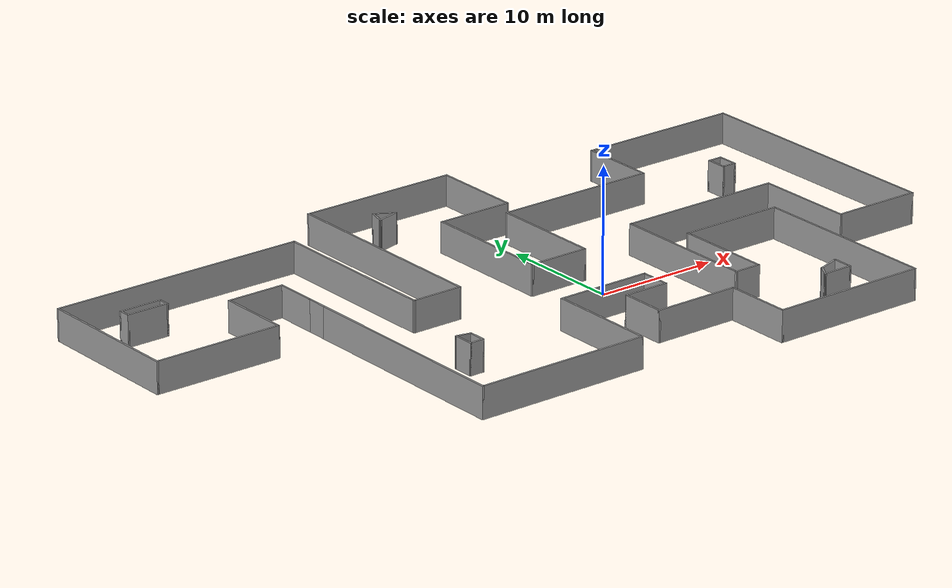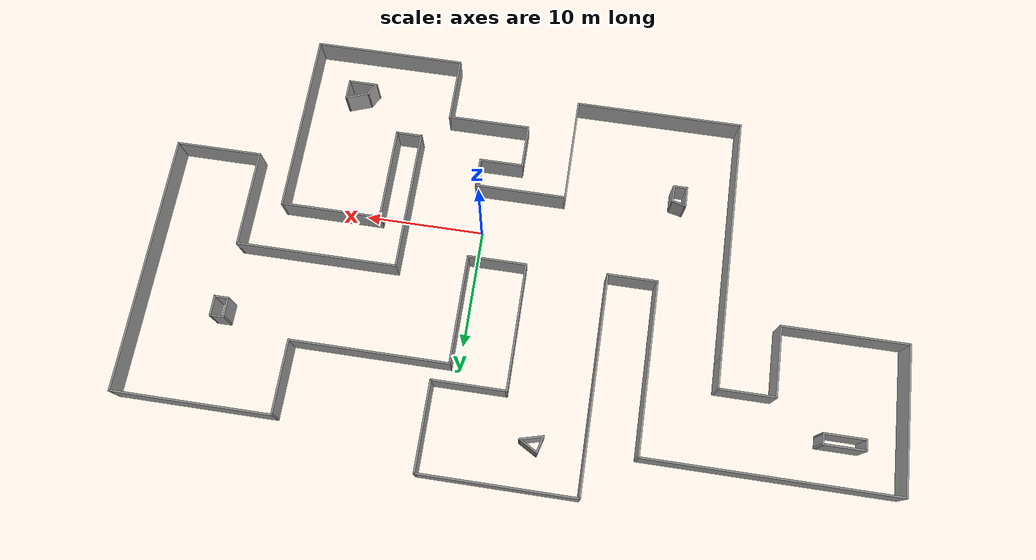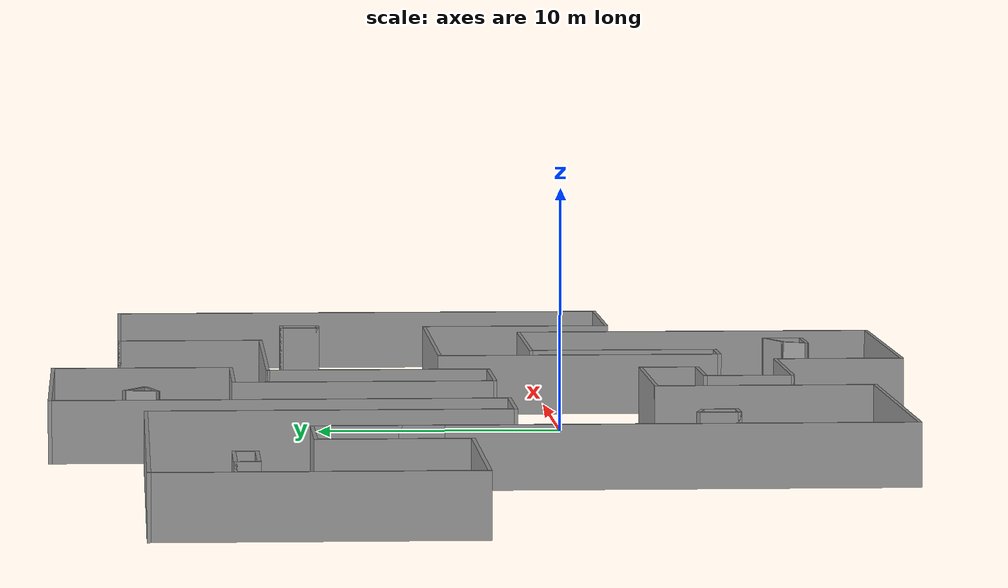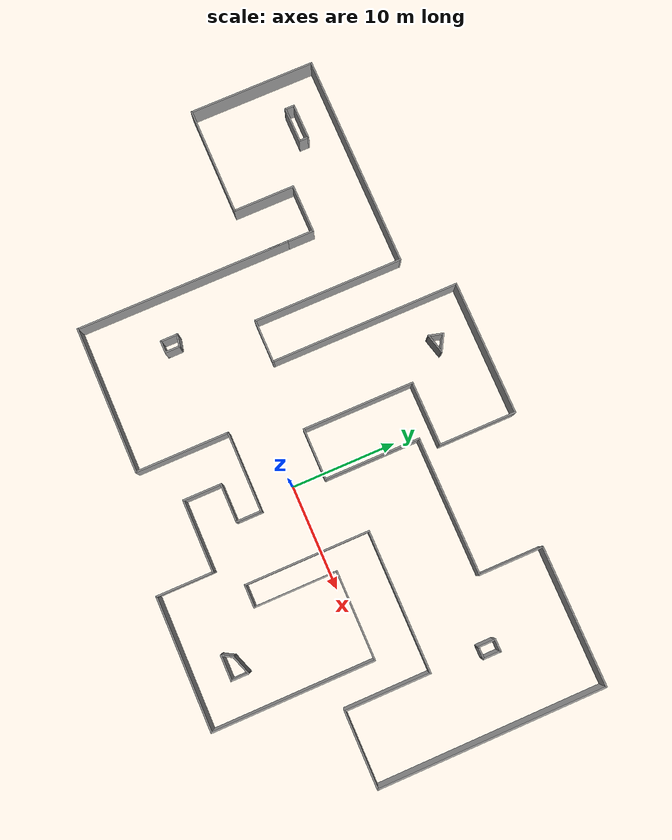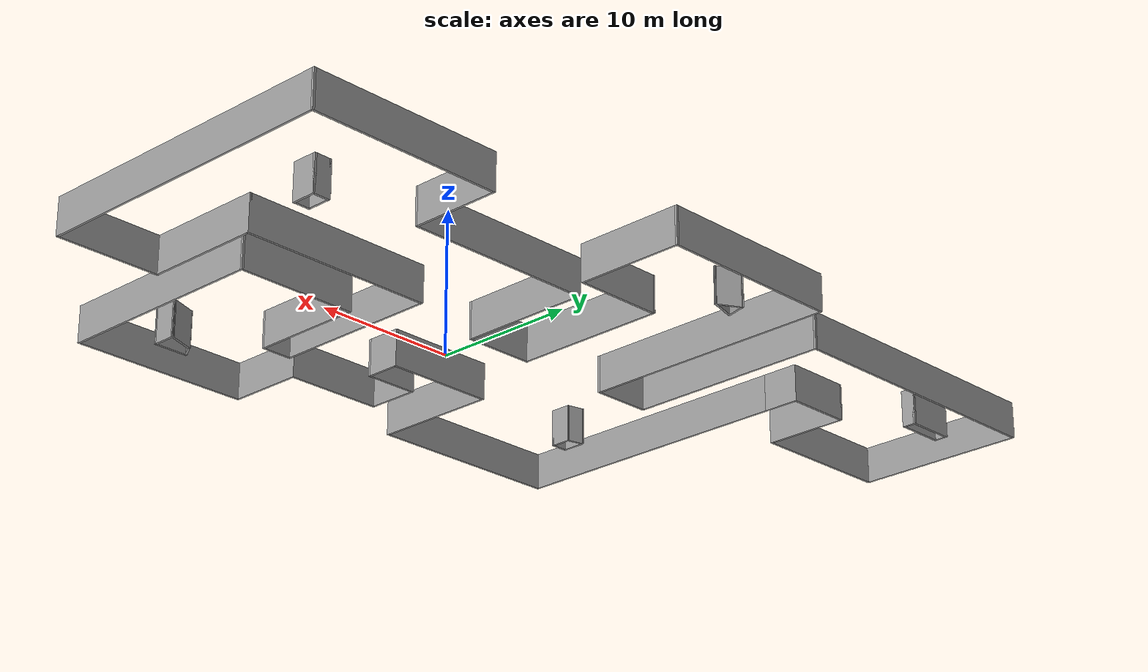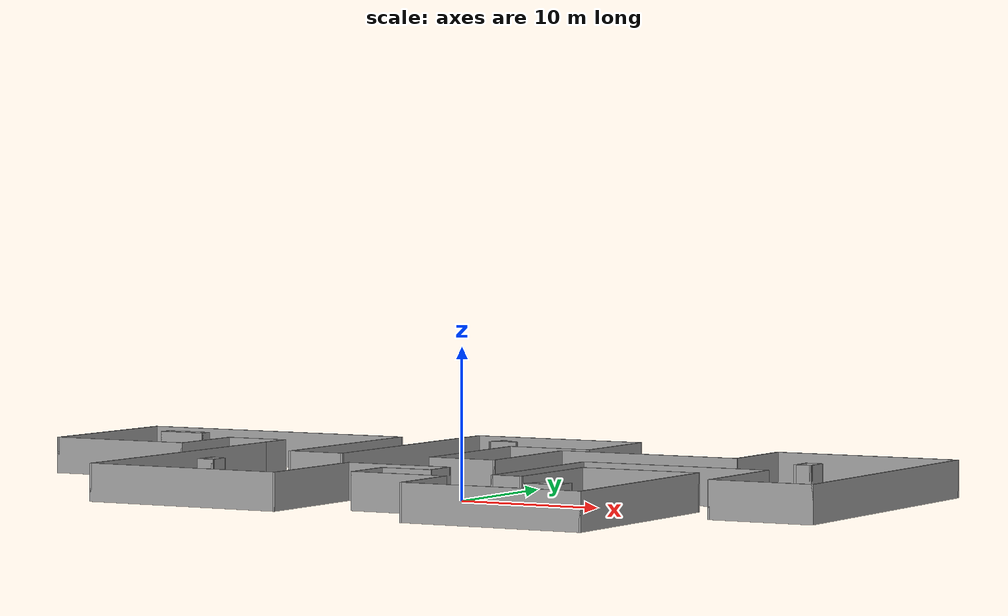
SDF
<?xml version='1.0'?>
<sdf version='1.6'>
  <model name='new_map'>
    <pose frame=''>-4.36476 3.09529 0 0 -0 0</pose>
    <link name='Wall_1'>
      <collision name='Wall_1_Collision'>
        <geometry>
          <box>
            <size>20.75 0.15 2.5</size>
          </box>
        </geometry>
        <pose frame=''>0 0 1.25 0 -0 0</pose>
      </collision>
      <visual name='Wall_1_Visual'>
        <pose frame=''>0 0 1.25 0 -0 0</pose>
        <geometry>
          <box>
            <size>20.75 0.15 2.5</size>
          </box>
        </geometry>
        <material>
          <script>
            <uri>file://media/materials/scripts/gazebo.material</uri>
            <name>Gazebo/Grey</name>
          </script>
          <ambient>1 1 1 1</ambient>
        </material>
        <meta>
          <layer>0</layer>
        </meta>
      </visual>
      <pose frame=''>-16.3 -5.05 0 0 -0 -1.5708</pose>
    </link>
    <link name='Wall_10'>
      <collision name='Wall_10_Collision'>
        <geometry>
          <box>
            <size>12.75 0.15 2.5</size>
          </box>
        </geometry>
        <pose frame=''>0 0 1.25 0 -0 0</pose>
      </collision>
      <visual name='Wall_10_Visual'>
        <pose frame=''>0 0 1.25 0 -0 0</pose>
        <geometry>
          <box>
            <size>12.75 0.15 2.5</size>
          </box>
        </geometry>
        <material>
          <script>
            <uri>file://media/materials/scripts/gazebo.material</uri>
            <name>Gazebo/Grey</name>
          </script>
          <ambient>1 1 1 1</ambient>
        </material>
        <meta>
          <layer>0</layer>
        </meta>
      </visual>
      <pose frame=''>14.95 -17.8 0 0 -0 0</pose>
    </link>
    <link name='Wall_11'>
      <collision name='Wall_11_Collision'>
        <geometry>
          <box>
            <size>15.5 0.15 2.5</size>
          </box>
        </geometry>
        <pose frame=''>0 0 1.25 0 -0 0</pose>
      </collision>
      <visual name='Wall_11_Visual'>
        <pose frame=''>0 0 1.25 0 -0 0</pose>
        <geometry>
          <box>
            <size>15.5 0.15 2.5</size>
          </box>
        </geometry>
        <material>
          <script>
            <uri>file://media/materials/scripts/gazebo.material</uri>
            <name>Gazebo/Grey</name>
          </script>
          <ambient>1 1 1 1</ambient>
        </material>
        <meta>
          <layer>0</layer>
        </meta>
      </visual>
      <pose frame=''>21.25 -10.125 0 0 -0 1.5708</pose>
    </link>
    <link name='Wall_12'>
      <collision name='Wall_12_Collision'>
        <geometry>
          <box>
            <size>8.5 0.15 2.5</size>
          </box>
        </geometry>
        <pose frame=''>0 0 1.25 0 -0 0</pose>
      </collision>
      <visual name='Wall_12_Visual'>
        <pose frame=''>0 0 1.25 0 -0 0</pose>
        <geometry>
          <box>
            <size>8.5 0.15 2.5</size>
          </box>
        </geometry>
        <material>
          <script>
            <uri>file://media/materials/scripts/gazebo.material</uri>
            <name>Gazebo/Grey</name>
          </script>
          <ambient>1 1 1 1</ambient>
        </material>
        <meta>
          <layer>0</layer>
        </meta>
      </visual>
      <pose frame=''>17.075 -2.45 0 0 -0 3.14159</pose>
    </link>
    <link name='Wall_13'>
      <collision name='Wall_13_Collision'>
        <geometry>
          <box>
            <size>8 0.15 2.5</size>
          </box>
        </geometry>
        <pose frame=''>0 0 1.25 0 -0 0</pose>
      </collision>
      <visual name='Wall_13_Visual'>
        <pose frame=''>0 0 1.25 0 -0 0</pose>
        <geometry>
          <box>
            <size>8 0.15 2.5</size>
          </box>
        </geometry>
        <material>
          <script>
            <uri>file://media/materials/scripts/gazebo.material</uri>
            <name>Gazebo/Grey</name>
          </script>
          <ambient>1 1 1 1</ambient>
        </material>
        <meta>
          <layer>0</layer>
        </meta>
      </visual>
      <pose frame=''>12.9 -6.375 0 0 -0 -1.5708</pose>
    </link>
    <link name='Wall_14'>
      <collision name='Wall_14_Collision'>
        <geometry>
          <box>
            <size>2.25 0.15 2.5</size>
          </box>
        </geometry>
        <pose frame=''>0 0 1.25 0 -0 0</pose>
      </collision>
      <visual name='Wall_14_Visual'>
        <pose frame=''>0 0 1.25 0 -0 0</pose>
        <geometry>
          <box>
            <size>2.25 0.15 2.5</size>
          </box>
        </geometry>
        <material>
          <script>
            <uri>file://media/materials/scripts/gazebo.material</uri>
            <name>Gazebo/Grey</name>
          </script>
          <ambient>1 1 1 1</ambient>
        </material>
        <meta>
          <layer>0</layer>
        </meta>
      </visual>
      <pose frame=''>11.85 -10.3 0 0 -0 3.14159</pose>
    </link>
    <link name='Wall_15'>
      <collision name='Wall_15_Collision'>
        <geometry>
          <box>
            <size>12 0.15 2.5</size>
          </box>
        </geometry>
        <pose frame=''>0 0 1.25 0 -0 0</pose>
      </collision>
      <visual name='Wall_15_Visual'>
        <pose frame=''>0 0 1.25 0 -0 0</pose>
        <geometry>
          <box>
            <size>12 0.15 2.5</size>
          </box>
        </geometry>
        <material>
          <script>
            <uri>file://media/materials/scripts/gazebo.material</uri>
            <name>Gazebo/Grey</name>
          </script>
          <ambient>1 1 1 1</ambient>
        </material>
        <meta>
          <layer>0</layer>
        </meta>
      </visual>
      <pose frame=''>10.8 -4.375 0 0 -0 1.5708</pose>
    </link>
    <link name='Wall_16'>
      <collision name='Wall_16_Collision'>
        <geometry>
          <box>
            <size>13.5 0.15 2.5</size>
          </box>
        </geometry>
        <pose frame=''>0 0 1.25 0 -0 0</pose>
      </collision>
      <visual name='Wall_16_Visual'>
        <pose frame=''>0 0 1.25 0 -0 0</pose>
        <geometry>
          <box>
            <size>13.5 0.15 2.5</size>
          </box>
        </geometry>
        <material>
          <script>
            <uri>file://media/materials/scripts/gazebo.material</uri>
            <name>Gazebo/Grey</name>
          </script>
          <ambient>1 1 1 1</ambient>
        </material>
        <meta>
          <layer>0</layer>
        </meta>
      </visual>
      <pose frame=''>17.475 1.55 0 0 -0 0</pose>
    </link>
    <link name='Wall_17'>
      <collision name='Wall_17_Collision'>
        <geometry>
          <box>
            <size>8.25 0.15 2.5</size>
          </box>
        </geometry>
        <pose frame=''>0 0 1.25 0 -0 0</pose>
      </collision>
      <visual name='Wall_17_Visual'>
        <pose frame=''>0 0 1.25 0 -0 0</pose>
        <geometry>
          <box>
            <size>8.25 0.15 2.5</size>
          </box>
        </geometry>
        <material>
          <script>
            <uri>file://media/materials/scripts/gazebo.material</uri>
            <name>Gazebo/Grey</name>
          </script>
          <ambient>1 1 1 1</ambient>
        </material>
        <meta>
          <layer>0</layer>
        </meta>
      </visual>
      <pose frame=''>24.15 -2.5 0 0 -0 -1.5708</pose>
    </link>
    <link name='Wall_18'>
      <collision name='Wall_18_Collision'>
        <geometry>
          <box>
            <size>7.25 0.15 2.5</size>
          </box>
        </geometry>
        <pose frame=''>0 0 1.25 0 -0 0</pose>
      </collision>
      <visual name='Wall_18_Visual'>
        <pose frame=''>0 0 1.25 0 -0 0</pose>
        <geometry>
          <box>
            <size>7.25 0.15 2.5</size>
          </box>
        </geometry>
        <material>
          <script>
            <uri>file://media/materials/scripts/gazebo.material</uri>
            <name>Gazebo/Grey</name>
          </script>
          <ambient>1 1 1 1</ambient>
        </material>
        <meta>
          <layer>0</layer>
        </meta>
      </visual>
      <pose frame=''>27.7 -6.55 0 0 -0 0</pose>
    </link>
    <link name='Wall_19'>
      <collision name='Wall_19_Collision'>
        <geometry>
          <box>
            <size>21.75 0.15 2.5</size>
          </box>
        </geometry>
        <pose frame=''>0 0 1.25 0 -0 0</pose>
      </collision>
      <visual name='Wall_19_Visual'>
        <pose frame=''>0 0 1.25 0 -0 0</pose>
        <geometry>
          <box>
            <size>21.75 0.15 2.5</size>
          </box>
        </geometry>
        <material>
          <script>
            <uri>file://media/materials/scripts/gazebo.material</uri>
            <name>Gazebo/Grey</name>
          </script>
          <ambient>1 1 1 1</ambient>
        </material>
        <meta>
          <layer>0</layer>
        </meta>
      </visual>
      <pose frame=''>31.25 4.25 0 0 -0 1.5708</pose>
    </link>
    <link name='Wall_2'>
      <collision name='Wall_2_Collision'>
        <geometry>
          <box>
            <size>14.25 0.15 2.5</size>
          </box>
        </geometry>
        <pose frame=''>0 0 1.25 0 -0 0</pose>
      </collision>
      <visual name='Wall_2_Visual'>
        <pose frame=''>0 0 1.25 0 -0 0</pose>
        <geometry>
          <box>
            <size>14.25 0.15 2.5</size>
          </box>
        </geometry>
        <material>
          <script>
            <uri>file://media/materials/scripts/gazebo.material</uri>
            <name>Gazebo/Grey</name>
          </script>
          <ambient>1 1 1 1</ambient>
        </material>
        <meta>
          <layer>0</layer>
        </meta>
      </visual>
      <pose frame=''>-9.25 -15.35 0 0 -0 0</pose>
    </link>
    <link name='Wall_20'>
      <collision name='Wall_20_Collision'>
        <geometry>
          <box>
            <size>13.25 0.15 2.5</size>
          </box>
        </geometry>
        <pose frame=''>0 0 1.25 0 -0 0</pose>
      </collision>
      <visual name='Wall_20_Visual'>
        <pose frame=''>0 0 1.25 0 -0 0</pose>
        <geometry>
          <box>
            <size>13.25 0.15 2.5</size>
          </box>
        </geometry>
        <material>
          <script>
            <uri>file://media/materials/scripts/gazebo.material</uri>
            <name>Gazebo/Grey</name>
          </script>
          <ambient>1 1 1 1</ambient>
        </material>
        <meta>
          <layer>0</layer>
        </meta>
      </visual>
      <pose frame=''>24.7 15.05 0 0 -0 3.14159</pose>
    </link>
    <link name='Wall_21'>
      <collision name='Wall_21_Collision'>
        <geometry>
          <box>
            <size>6.25 0.15 2.5</size>
          </box>
        </geometry>
        <pose frame=''>0 0 1.25 0 -0 0</pose>
      </collision>
      <visual name='Wall_21_Visual'>
        <pose frame=''>0 0 1.25 0 -0 0</pose>
        <geometry>
          <box>
            <size>6.25 0.15 2.5</size>
          </box>
        </geometry>
        <material>
          <script>
            <uri>file://media/materials/scripts/gazebo.material</uri>
            <name>Gazebo/Grey</name>
          </script>
          <ambient>1 1 1 1</ambient>
        </material>
        <meta>
          <layer>0</layer>
        </meta>
      </visual>
      <pose frame=''>18.15 12 0 0 -0 -1.5708</pose>
    </link>
    <link name='Wall_22'>
      <collision name='Wall_22_Collision'>
        <geometry>
          <box>
            <size>13.25 0.15 2.5</size>
          </box>
        </geometry>
        <pose frame=''>0 0 1.25 0 -0 0</pose>
      </collision>
      <visual name='Wall_22_Visual'>
        <pose frame=''>0 0 1.25 0 -0 0</pose>
        <geometry>
          <box>
            <size>13.25 0.15 2.5</size>
          </box>
        </geometry>
        <material>
          <script>
            <uri>file://media/materials/scripts/gazebo.material</uri>
            <name>Gazebo/Grey</name>
          </script>
          <ambient>1 1 1 1</ambient>
        </material>
        <meta>
          <layer>0</layer>
        </meta>
      </visual>
      <pose frame=''>11.6 8.95 0 0 -0 3.14159</pose>
    </link>
    <link name='Wall_23'>
      <collision name='Wall_23_Collision'>
        <geometry>
          <box>
            <size>9.25 0.15 2.5</size>
          </box>
        </geometry>
        <pose frame=''>0 0 1.25 0 -0 0</pose>
      </collision>
      <visual name='Wall_23_Visual'>
        <pose frame=''>0 0 1.25 0 -0 0</pose>
        <geometry>
          <box>
            <size>9.25 0.15 2.5</size>
          </box>
        </geometry>
        <material>
          <script>
            <uri>file://media/materials/scripts/gazebo.material</uri>
            <name>Gazebo/Grey</name>
          </script>
          <ambient>1 1 1 1</ambient>
        </material>
        <meta>
          <layer>0</layer>
        </meta>
      </visual>
      <pose frame=''>5.05 4.4 0 0 -0 -1.5708</pose>
    </link>
    <link name='Wall_24'>
      <collision name='Wall_24_Collision'>
        <geometry>
          <box>
            <size>5 0.15 2.5</size>
          </box>
        </geometry>
        <pose frame=''>0 0 1.25 0 -0 0</pose>
      </collision>
      <visual name='Wall_24_Visual'>
        <pose frame=''>0 0 1.25 0 -0 0</pose>
        <geometry>
          <box>
            <size>5 0.15 2.5</size>
          </box>
        </geometry>
        <material>
          <script>
            <uri>file://media/materials/scripts/gazebo.material</uri>
            <name>Gazebo/Grey</name>
          </script>
          <ambient>1 1 1 1</ambient>
        </material>
        <meta>
          <layer>0</layer>
        </meta>
      </visual>
      <pose frame=''>2.625 -0.150001 0 0 -0 3.14159</pose>
    </link>
    <link name='Wall_25'>
      <collision name='Wall_25_Collision'>
        <geometry>
          <box>
            <size>10.75 0.15 2.5</size>
          </box>
        </geometry>
        <pose frame=''>0 0 1.25 0 -0 0</pose>
      </collision>
      <visual name='Wall_25_Visual'>
        <pose frame=''>0 0 1.25 0 -0 0</pose>
        <geometry>
          <box>
            <size>10.75 0.15 2.5</size>
          </box>
        </geometry>
        <material>
          <script>
            <uri>file://media/materials/scripts/gazebo.material</uri>
            <name>Gazebo/Grey</name>
          </script>
          <ambient>1 1 1 1</ambient>
        </material>
        <meta>
          <layer>0</layer>
        </meta>
      </visual>
      <pose frame=''>0.2 5.15 0 0 -0 1.5708</pose>
    </link>
    <link name='Wall_26'>
      <collision name='Wall_26_Collision'>
        <geometry>
          <box>
            <size>6.25 0.15 2.5</size>
          </box>
        </geometry>
        <pose frame=''>0 0 1.25 0 -0 0</pose>
      </collision>
      <visual name='Wall_26_Visual'>
        <pose frame=''>0 0 1.25 0 -0 0</pose>
        <geometry>
          <box>
            <size>6.25 0.15 2.5</size>
          </box>
        </geometry>
        <material>
          <script>
            <uri>file://media/materials/scripts/gazebo.material</uri>
            <name>Gazebo/Grey</name>
          </script>
          <ambient>1 1 1 1</ambient>
        </material>
        <meta>
          <layer>0</layer>
        </meta>
      </visual>
      <pose frame=''>3.25 10.45 0 0 -0 0</pose>
    </link>
    <link name='Wall_27'>
      <collision name='Wall_27_Collision'>
        <geometry>
          <box>
            <size>7.5 0.15 2.5</size>
          </box>
        </geometry>
        <pose frame=''>0 0 1.25 0 -0 0</pose>
      </collision>
      <visual name='Wall_27_Visual'>
        <pose frame=''>0 0 1.25 0 -0 0</pose>
        <geometry>
          <box>
            <size>7.5 0.15 2.5</size>
          </box>
        </geometry>
        <material>
          <script>
            <uri>file://media/materials/scripts/gazebo.material</uri>
            <name>Gazebo/Grey</name>
          </script>
          <ambient>1 1 1 1</ambient>
        </material>
        <meta>
          <layer>0</layer>
        </meta>
      </visual>
      <pose frame=''>6.3 14.125 0 0 -0 1.5708</pose>
    </link>
    <link name='Wall_28'>
      <collision name='Wall_28_Collision'>
        <geometry>
          <box>
            <size>13 0.15 2.5</size>
          </box>
        </geometry>
        <pose frame=''>0 0 1.25 0 -0 0</pose>
      </collision>
      <visual name='Wall_28_Visual'>
        <pose frame=''>0 0 1.25 0 -0 0</pose>
        <geometry>
          <box>
            <size>13 0.15 2.5</size>
          </box>
        </geometry>
        <material>
          <script>
            <uri>file://media/materials/scripts/gazebo.material</uri>
            <name>Gazebo/Grey</name>
          </script>
          <ambient>1 1 1 1</ambient>
        </material>
        <meta>
          <layer>0</layer>
        </meta>
      </visual>
      <pose frame=''>-0.125 17.8 0 0 -0 3.14159</pose>
    </link>
    <link name='Wall_29'>
      <collision name='Wall_29_Collision'>
        <geometry>
          <box>
            <size>18.25 0.15 2.5</size>
          </box>
        </geometry>
        <pose frame=''>0 0 1.25 0 -0 0</pose>
      </collision>
      <visual name='Wall_29_Visual'>
        <pose frame=''>0 0 1.25 0 -0 0</pose>
        <geometry>
          <box>
            <size>18.25 0.15 2.5</size>
          </box>
        </geometry>
        <material>
          <script>
            <uri>file://media/materials/scripts/gazebo.material</uri>
            <name>Gazebo/Grey</name>
          </script>
          <ambient>1 1 1 1</ambient>
        </material>
        <meta>
          <layer>0</layer>
        </meta>
      </visual>
      <pose frame=''>-6.55 8.75 0 0 -0 -1.5708</pose>
    </link>
    <link name='Wall_3'>
      <collision name='Wall_3_Collision'>
        <geometry>
          <box>
            <size>9 0.15 2.5</size>
          </box>
        </geometry>
        <pose frame=''>0 0 1.25 0 -0 0</pose>
      </collision>
      <visual name='Wall_3_Visual'>
        <pose frame=''>0 0 1.25 0 -0 0</pose>
        <geometry>
          <box>
            <size>9 0.15 2.5</size>
          </box>
        </geometry>
        <material>
          <script>
            <uri>file://media/materials/scripts/gazebo.material</uri>
            <name>Gazebo/Grey</name>
          </script>
          <ambient>1 1 1 1</ambient>
        </material>
        <meta>
          <layer>0</layer>
        </meta>
      </visual>
      <pose frame=''>-2.2 -10.925 0 0 -0 1.5708</pose>
    </link>
    <link name='Wall_30'>
      <collision name='Wall_30_Collision'>
        <geometry>
          <box>
            <size>4.25 0.15 2.5</size>
          </box>
        </geometry>
        <pose frame=''>0 0 1.25 0 -0 0</pose>
      </collision>
      <visual name='Wall_30_Visual'>
        <pose frame=''>0 0 1.25 0 -0 0</pose>
        <geometry>
          <box>
            <size>4.25 0.15 2.5</size>
          </box>
        </geometry>
        <material>
          <script>
            <uri>file://media/materials/scripts/gazebo.material</uri>
            <name>Gazebo/Grey</name>
          </script>
          <ambient>1 1 1 1</ambient>
        </material>
        <meta>
          <layer>0</layer>
        </meta>
      </visual>
      <pose frame=''>-8.6 -0.300001 0 0 -0 3.14159</pose>
    </link>
    <link name='Wall_31'>
      <collision name='Wall_31_Collision'>
        <geometry>
          <box>
            <size>14.5 0.15 2.5</size>
          </box>
        </geometry>
        <pose frame=''>0 0 1.25 0 -0 0</pose>
      </collision>
      <visual name='Wall_31_Visual'>
        <pose frame=''>0 0 1.25 0 -0 0</pose>
        <geometry>
          <box>
            <size>14.5 0.15 2.5</size>
          </box>
        </geometry>
        <material>
          <script>
            <uri>file://media/materials/scripts/gazebo.material</uri>
            <name>Gazebo/Grey</name>
          </script>
          <ambient>1 1 1 1</ambient>
        </material>
        <meta>
          <layer>0</layer>
        </meta>
      </visual>
      <pose frame=''>-10.65 6.875 0 0 -0 1.5708</pose>
    </link>
    <link name='Wall_32'>
      <collision name='Wall_32_Collision'>
        <geometry>
          <box>
            <size>20.75 0.15 2.5</size>
          </box>
        </geometry>
        <pose frame=''>0 0 1.25 0 -0 0</pose>
      </collision>
      <visual name='Wall_32_Visual'>
        <pose frame=''>0 0 1.25 0 -0 0</pose>
        <geometry>
          <box>
            <size>20.75 0.15 2.5</size>
          </box>
        </geometry>
        <material>
          <script>
            <uri>file://media/materials/scripts/gazebo.material</uri>
            <name>Gazebo/Grey</name>
          </script>
          <ambient>1 1 1 1</ambient>
        </material>
        <meta>
          <layer>0</layer>
        </meta>
      </visual>
      <pose frame=''>-20.95 14.05 0 0 -0 3.14159</pose>
    </link>
    <link name='Wall_33'>
      <collision name='Wall_33_Collision'>
        <geometry>
          <box>
            <size>12.25 0.15 2.5</size>
          </box>
        </geometry>
        <pose frame=''>0 0 1.25 0 -0 0</pose>
      </collision>
      <visual name='Wall_33_Visual'>
        <pose frame=''>0 0 1.25 0 -0 0</pose>
        <geometry>
          <box>
            <size>12.25 0.15 2.5</size>
          </box>
        </geometry>
        <material>
          <script>
            <uri>file://media/materials/scripts/gazebo.material</uri>
            <name>Gazebo/Grey</name>
          </script>
          <ambient>1 1 1 1</ambient>
        </material>
        <meta>
          <layer>0</layer>
        </meta>
      </visual>
      <pose frame=''>-31.25 8 0 0 -0 -1.5708</pose>
    </link>
    <link name='Wall_34'>
      <collision name='Wall_34_Collision'>
        <geometry>
          <box>
            <size>10.5 0.15 2.5</size>
          </box>
        </geometry>
        <pose frame=''>0 0 1.25 0 -0 0</pose>
      </collision>
      <visual name='Wall_34_Visual'>
        <pose frame=''>0 0 1.25 0 -0 0</pose>
        <geometry>
          <box>
            <size>10.5 0.15 2.5</size>
          </box>
        </geometry>
        <material>
          <script>
            <uri>file://media/materials/scripts/gazebo.material</uri>
            <name>Gazebo/Grey</name>
          </script>
          <ambient>1 1 1 1</ambient>
        </material>
        <meta>
          <layer>0</layer>
        </meta>
      </visual>
      <pose frame=''>-26.075 1.95 0 0 -0 0</pose>
    </link>
    <link name='Wall_35'>
      <collision name='Wall_35_Collision'>
        <geometry>
          <box>
            <size>6 0.15 2.5</size>
          </box>
        </geometry>
        <pose frame=''>0 0 1.25 0 -0 0</pose>
      </collision>
      <visual name='Wall_35_Visual'>
        <pose frame=''>0 0 1.25 0 -0 0</pose>
        <geometry>
          <box>
            <size>6 0.15 2.5</size>
          </box>
        </geometry>
        <material>
          <script>
            <uri>file://media/materials/scripts/gazebo.material</uri>
            <name>Gazebo/Grey</name>
          </script>
          <ambient>1 1 1 1</ambient>
        </material>
        <meta>
          <layer>0</layer>
        </meta>
      </visual>
      <pose frame=''>-20.9 4.875 0 0 -0 1.5708</pose>
    </link>
    <link name='Wall_36'>
      <collision name='Wall_36_Collision'>
        <geometry>
          <box>
            <size>4.75 0.15 2.5</size>
          </box>
        </geometry>
        <pose frame=''>0 0 1.25 0 -0 0</pose>
      </collision>
      <visual name='Wall_36_Visual'>
        <pose frame=''>0 0 1.25 0 -0 0</pose>
        <geometry>
          <box>
            <size>4.75 0.15 2.5</size>
          </box>
        </geometry>
        <material>
          <script>
            <uri>file://media/materials/scripts/gazebo.material</uri>
            <name>Gazebo/Grey</name>
          </script>
          <ambient>1 1 1 1</ambient>
        </material>
        <meta>
          <layer>0</layer>
        </meta>
      </visual>
      <pose frame=''>-18.6 7.8 0 0 -0 0</pose>
    </link>
    <link name='Wall_37'>
      <collision name='Wall_37_Collision'>
        <geometry>
          <box>
            <size>3.5 0.15 2.5</size>
          </box>
        </geometry>
        <pose frame=''>0 0 1.25 0 -0 0</pose>
      </collision>
      <visual name='Wall_37_Visual'>
        <pose frame=''>0 0 1.25 0 -0 0</pose>
        <geometry>
          <box>
            <size>3.5 0.15 2.5</size>
          </box>
        </geometry>
        <material>
          <script>
            <uri>file://media/materials/scripts/gazebo.material</uri>
            <name>Gazebo/Grey</name>
          </script>
          <ambient>1 1 1 1</ambient>
        </material>
        <meta>
          <layer>0</layer>
        </meta>
      </visual>
      <pose frame=''>-16.3 6.125 0 0 -0 -1.5708</pose>
    </link>
    <link name='Wall_38'>
      <collision name='Wall_38_Collision'>
        <geometry>
          <box>
            <size>1.75 0.15 2.5</size>
          </box>
        </geometry>
        <pose frame=''>0 0 1.25 0 -0 0</pose>
      </collision>
      <visual name='Wall_38_Visual'>
        <pose frame=''>0 0 1.25 0 -0 0</pose>
        <geometry>
          <box>
            <size>1.75 0.15 2.5</size>
          </box>
        </geometry>
        <material>
          <script>
            <uri>file://media/materials/scripts/gazebo.material</uri>
            <name>Gazebo/Grey</name>
          </script>
          <ambient>1 1 1 1</ambient>
        </material>
        <meta>
          <layer>0</layer>
        </meta>
      </visual>
      <pose frame=''>-16.3 3.65 0 0 -0 -1.5708</pose>
    </link>
    <link name='Wall_4'>
      <collision name='Wall_4_Collision'>
        <geometry>
          <box>
            <size>7.75 0.15 2.5</size>
          </box>
        </geometry>
        <pose frame=''>0 0 1.25 0 -0 0</pose>
      </collision>
      <visual name='Wall_4_Visual'>
        <pose frame=''>0 0 1.25 0 -0 0</pose>
        <geometry>
          <box>
            <size>7.75 0.15 2.5</size>
          </box>
        </geometry>
        <material>
          <script>
            <uri>file://media/materials/scripts/gazebo.material</uri>
            <name>Gazebo/Grey</name>
          </script>
          <ambient>1 1 1 1</ambient>
        </material>
        <meta>
          <layer>0</layer>
        </meta>
      </visual>
      <pose frame=''>1.6 -6.5 0 0 -0 0</pose>
    </link>
    <link name='Wall_40'>
      <collision name='Wall_40_Collision'>
        <geometry>
          <box>
            <size>1.75 0.15 2.5</size>
          </box>
        </geometry>
        <pose frame=''>0 0 1.25 0 -0 0</pose>
      </collision>
      <visual name='Wall_40_Visual'>
        <pose frame=''>0 0 1.25 0 -0 0</pose>
        <geometry>
          <box>
            <size>1.75 0.15 2.5</size>
          </box>
        </geometry>
        <material>
          <script>
            <uri>file://media/materials/scripts/gazebo.material</uri>
            <name>Gazebo/Grey</name>
          </script>
          <ambient>1 1 1 1</ambient>
        </material>
        <meta>
          <layer>0</layer>
        </meta>
      </visual>
      <pose frame=''>23.7723 7.08607 0 0 -0 -1.5708</pose>
    </link>
    <link name='Wall_41'>
      <collision name='Wall_41_Collision'>
        <geometry>
          <box>
            <size>1.25 0.15 2.5</size>
          </box>
        </geometry>
        <pose frame=''>0 0 1.25 0 -0 0</pose>
      </collision>
      <visual name='Wall_41_Visual'>
        <pose frame=''>0 0 1.25 0 -0 0</pose>
        <geometry>
          <box>
            <size>1.25 0.15 2.5</size>
          </box>
        </geometry>
        <material>
          <script>
            <uri>file://media/materials/scripts/gazebo.material</uri>
            <name>Gazebo/Grey</name>
          </script>
          <ambient>1 1 1 1</ambient>
        </material>
        <meta>
          <layer>0</layer>
        </meta>
      </visual>
      <pose frame=''>24.3223 6.28607 0 0 -0 0</pose>
    </link>
    <link name='Wall_42'>
      <collision name='Wall_42_Collision'>
        <geometry>
          <box>
            <size>1.75 0.15 2.5</size>
          </box>
        </geometry>
        <pose frame=''>0 0 1.25 0 -0 0</pose>
      </collision>
      <visual name='Wall_42_Visual'>
        <pose frame=''>0 0 1.25 0 -0 0</pose>
        <geometry>
          <box>
            <size>1.75 0.15 2.5</size>
          </box>
        </geometry>
        <material>
          <script>
            <uri>file://media/materials/scripts/gazebo.material</uri>
            <name>Gazebo/Grey</name>
          </script>
          <ambient>1 1 1 1</ambient>
        </material>
        <meta>
          <layer>0</layer>
        </meta>
      </visual>
      <pose frame=''>24.8723 7.08607 0 0 -0 1.5708</pose>
    </link>
    <link name='Wall_43'>
      <collision name='Wall_43_Collision'>
        <geometry>
          <box>
            <size>1.25 0.15 2.5</size>
          </box>
        </geometry>
        <pose frame=''>0 0 1.25 0 -0 0</pose>
      </collision>
      <visual name='Wall_43_Visual'>
        <pose frame=''>0 0 1.25 0 -0 0</pose>
        <geometry>
          <box>
            <size>1.25 0.15 2.5</size>
          </box>
        </geometry>
        <material>
          <script>
            <uri>file://media/materials/scripts/gazebo.material</uri>
            <name>Gazebo/Grey</name>
          </script>
          <ambient>1 1 1 1</ambient>
        </material>
        <meta>
          <layer>0</layer>
        </meta>
      </visual>
      <pose frame=''>24.3223 7.88607 0 0 -0 3.14159</pose>
    </link>
    <link name='Wall_45'>
      <collision name='Wall_45_Collision'>
        <geometry>
          <box>
            <size>1.75 0.15 2.5</size>
          </box>
        </geometry>
        <pose frame=''>0 0 1.25 0 -0 0</pose>
      </collision>
      <visual name='Wall_45_Visual'>
        <pose frame=''>0 0 1.25 0 -0 0</pose>
        <geometry>
          <box>
            <size>1.75 0.15 2.5</size>
          </box>
        </geometry>
        <material>
          <script>
            <uri>file://media/materials/scripts/gazebo.material</uri>
            <name>Gazebo/Grey</name>
          </script>
          <ambient>1 1 1 1</ambient>
        </material>
        <meta>
          <layer>0</layer>
        </meta>
      </visual>
      <pose frame=''>-12.2789 -8.06465 0 0 -0 -1.5708</pose>
    </link>
    <link name='Wall_46'>
      <collision name='Wall_46_Collision'>
        <geometry>
          <box>
            <size>1.25 0.15 2.5</size>
          </box>
        </geometry>
        <pose frame=''>0 0 1.25 0 -0 0</pose>
      </collision>
      <visual name='Wall_46_Visual'>
        <pose frame=''>0 0 1.25 0 -0 0</pose>
        <geometry>
          <box>
            <size>1.25 0.15 2.5</size>
          </box>
        </geometry>
        <material>
          <script>
            <uri>file://media/materials/scripts/gazebo.material</uri>
            <name>Gazebo/Grey</name>
          </script>
          <ambient>1 1 1 1</ambient>
        </material>
        <meta>
          <layer>0</layer>
        </meta>
      </visual>
      <pose frame=''>-11.7289 -8.86465 0 0 -0 0</pose>
    </link>
    <link name='Wall_47'>
      <collision name='Wall_47_Collision'>
        <geometry>
          <box>
            <size>1.5 0.15 2.5</size>
          </box>
        </geometry>
        <pose frame=''>0 0 1.25 0 -0 0</pose>
      </collision>
      <visual name='Wall_47_Visual'>
        <pose frame=''>0 0 1.25 0 -0 0</pose>
        <geometry>
          <box>
            <size>1.5 0.15 2.5</size>
          </box>
        </geometry>
        <material>
          <script>
            <uri>file://media/materials/scripts/gazebo.material</uri>
            <name>Gazebo/Grey</name>
          </script>
          <ambient>1 1 1 1</ambient>
        </material>
        <meta>
          <layer>0</layer>
        </meta>
      </visual>
      <pose frame=''>-11.1789 -8.18965 0 0 -0 1.5708</pose>
    </link>
    <link name='Wall_48'>
      <collision name='Wall_48_Collision'>
        <geometry>
          <box>
            <size>1.27805 0.15 2.5</size>
          </box>
        </geometry>
        <pose frame=''>0 0 1.25 0 -0 0</pose>
      </collision>
      <visual name='Wall_48_Visual'>
        <pose frame=''>0 0 1.25 0 -0 0</pose>
        <geometry>
          <box>
            <size>1.27805 0.15 2.5</size>
          </box>
        </geometry>
        <material>
          <script>
            <uri>file://media/materials/scripts/gazebo.material</uri>
            <name>Gazebo/Grey</name>
          </script>
          <ambient>1 1 1 1</ambient>
        </material>
        <meta>
          <layer>0</layer>
        </meta>
      </visual>
      <pose frame=''>-11.7289 -7.38965 0 0 -0 2.91812</pose>
    </link>
    <link name='Wall_5'>
      <collision name='Wall_5_Collision'>
        <geometry>
          <box>
            <size>2.5 0.15 2.5</size>
          </box>
        </geometry>
        <pose frame=''>0 0 1.25 0 -0 0</pose>
      </collision>
      <visual name='Wall_5_Visual'>
        <pose frame=''>0 0 1.25 0 -0 0</pose>
        <geometry>
          <box>
            <size>2.5 0.15 2.5</size>
          </box>
        </geometry>
        <material>
          <script>
            <uri>file://media/materials/scripts/gazebo.material</uri>
            <name>Gazebo/Grey</name>
          </script>
          <ambient>1 1 1 1</ambient>
        </material>
        <meta>
          <layer>0</layer>
        </meta>
      </visual>
      <pose frame=''>5.4 -7.675 0 0 -0 -1.5708</pose>
    </link>
    <link name='Wall_50'>
      <collision name='Wall_50_Collision'>
        <geometry>
          <box>
            <size>1 0.15 2.5</size>
          </box>
        </geometry>
        <pose frame=''>0 0 1.25 0 -0 0</pose>
      </collision>
      <visual name='Wall_50_Visual'>
        <pose frame=''>0 0 1.25 0 -0 0</pose>
        <geometry>
          <box>
            <size>1 0.15 2.5</size>
          </box>
        </geometry>
        <material>
          <script>
            <uri>file://media/materials/scripts/gazebo.material</uri>
            <name>Gazebo/Grey</name>
          </script>
          <ambient>1 1 1 1</ambient>
        </material>
        <meta>
          <layer>0</layer>
        </meta>
      </visual>
      <pose frame=''>-28.0578 10.4949 0 0 -0 -1.5708</pose>
    </link>
    <link name='Wall_51'>
      <collision name='Wall_51_Collision'>
        <geometry>
          <box>
            <size>3.5 0.15 2.5</size>
          </box>
        </geometry>
        <pose frame=''>0 0 1.25 0 -0 0</pose>
      </collision>
      <visual name='Wall_51_Visual'>
        <pose frame=''>0 0 1.25 0 -0 0</pose>
        <geometry>
          <box>
            <size>3.5 0.15 2.5</size>
          </box>
        </geometry>
        <material>
          <script>
            <uri>file://media/materials/scripts/gazebo.material</uri>
            <name>Gazebo/Grey</name>
          </script>
          <ambient>1 1 1 1</ambient>
        </material>
        <meta>
          <layer>0</layer>
        </meta>
      </visual>
      <pose frame=''>-26.3828 10.0699 0 0 -0 0</pose>
    </link>
    <link name='Wall_52'>
      <collision name='Wall_52_Collision'>
        <geometry>
          <box>
            <size>1 0.15 2.5</size>
          </box>
        </geometry>
        <pose frame=''>0 0 1.25 0 -0 0</pose>
      </collision>
      <visual name='Wall_52_Visual'>
        <pose frame=''>0 0 1.25 0 -0 0</pose>
        <geometry>
          <box>
            <size>1 0.15 2.5</size>
          </box>
        </geometry>
        <material>
          <script>
            <uri>file://media/materials/scripts/gazebo.material</uri>
            <name>Gazebo/Grey</name>
          </script>
          <ambient>1 1 1 1</ambient>
        </material>
        <meta>
          <layer>0</layer>
        </meta>
      </visual>
      <pose frame=''>-24.7078 10.4949 0 0 -0 1.5708</pose>
    </link>
    <link name='Wall_53'>
      <collision name='Wall_53_Collision'>
        <geometry>
          <box>
            <size>3.5 0.15 2.5</size>
          </box>
        </geometry>
        <pose frame=''>0 0 1.25 0 -0 0</pose>
      </collision>
      <visual name='Wall_53_Visual'>
        <pose frame=''>0 0 1.25 0 -0 0</pose>
        <geometry>
          <box>
            <size>3.5 0.15 2.5</size>
          </box>
        </geometry>
        <material>
          <script>
            <uri>file://media/materials/scripts/gazebo.material</uri>
            <name>Gazebo/Grey</name>
          </script>
          <ambient>1 1 1 1</ambient>
        </material>
        <meta>
          <layer>0</layer>
        </meta>
      </visual>
      <pose frame=''>-26.3828 10.9199 0 0 -0 3.14159</pose>
    </link>
    <link name='Wall_55'>
      <collision name='Wall_55_Collision'>
        <geometry>
          <box>
            <size>1.5 0.15 2.5</size>
          </box>
        </geometry>
        <pose frame=''>0 0 1.25 0 -0 0</pose>
      </collision>
      <visual name='Wall_55_Visual'>
        <pose frame=''>0 0 1.25 0 -0 0</pose>
        <geometry>
          <box>
            <size>1.5 0.15 2.5</size>
          </box>
        </geometry>
        <material>
          <script>
            <uri>file://media/materials/scripts/gazebo.material</uri>
            <name>Gazebo/Grey</name>
          </script>
          <ambient>1 1 1 1</ambient>
        </material>
        <meta>
          <layer>0</layer>
        </meta>
      </visual>
      <pose frame=''>-2.97748 14.1977 0 0 -0 -1.8326</pose>
    </link>
    <link name='Wall_56'>
      <collision name='Wall_56_Collision'>
        <geometry>
          <box>
            <size>2 0.15 2.5</size>
          </box>
        </geometry>
        <pose frame=''>0 0 1.25 0 -0 0</pose>
      </collision>
      <visual name='Wall_56_Visual'>
        <pose frame=''>0 0 1.25 0 -0 0</pose>
        <geometry>
          <box>
            <size>2 0.15 2.5</size>
          </box>
        </geometry>
        <material>
          <script>
            <uri>file://media/materials/scripts/gazebo.material</uri>
            <name>Gazebo/Grey</name>
          </script>
          <ambient>1 1 1 1</ambient>
        </material>
        <meta>
          <layer>0</layer>
        </meta>
      </visual>
      <pose frame=''>-2.2587 13.7851 0 0 -0 0.261799</pose>
    </link>
    <link name='Wall_57'>
      <collision name='Wall_57_Collision'>
        <geometry>
          <box>
            <size>1.80756 0.15 2.5</size>
          </box>
        </geometry>
        <pose frame=''>0 0 1.25 0 -0 0</pose>
      </collision>
      <visual name='Wall_57_Visual'>
        <pose frame=''>0 0 1.25 0 -0 0</pose>
        <geometry>
          <box>
            <size>1.80756 0.15 2.5</size>
          </box>
        </geometry>
        <material>
          <script>
            <uri>file://media/materials/scripts/gazebo.material</uri>
            <name>Gazebo/Grey</name>
          </script>
          <ambient>1 1 1 1</ambient>
        </material>
        <meta>
          <layer>0</layer>
        </meta>
      </visual>
      <pose frame=''>-2.08399 14.4371 0 0 -0 2.6205</pose>
    </link>
    <link name='Wall_59'>
      <collision name='Wall_59_Collision'>
        <geometry>
          <box>
            <size>1.25 0.15 2.5</size>
          </box>
        </geometry>
        <pose frame=''>0 0 1.25 0 -0 0</pose>
      </collision>
      <visual name='Wall_59_Visual'>
        <pose frame=''>0 0 1.25 0 -0 0</pose>
        <geometry>
          <box>
            <size>1.25 0.15 2.5</size>
          </box>
        </geometry>
        <material>
          <script>
            <uri>file://media/materials/scripts/gazebo.material</uri>
            <name>Gazebo/Grey</name>
          </script>
          <ambient>1 1 1 1</ambient>
        </material>
        <meta>
          <layer>0</layer>
        </meta>
      </visual>
      <pose frame=''>15.8246 -14.0738 0 0 -0 -2.0944</pose>
    </link>
    <link name='Wall_6'>
      <collision name='Wall_6_Collision'>
        <geometry>
          <box>
            <size>3.75 0.15 2.5</size>
          </box>
        </geometry>
        <pose frame=''>0 0 1.25 0 -0 0</pose>
      </collision>
      <visual name='Wall_6_Visual'>
        <pose frame=''>0 0 1.25 0 -0 0</pose>
        <geometry>
          <box>
            <size>3.75 0.15 2.5</size>
          </box>
        </geometry>
        <material>
          <script>
            <uri>file://media/materials/scripts/gazebo.material</uri>
            <name>Gazebo/Grey</name>
          </script>
          <ambient>1 1 1 1</ambient>
        </material>
        <meta>
          <layer>0</layer>
        </meta>
      </visual>
      <pose frame=''>3.6 -8.85 0 0 -0 3.14159</pose>
    </link>
    <link name='Wall_60'>
      <collision name='Wall_60_Collision'>
        <geometry>
          <box>
            <size>2.5 0.15 2.5</size>
          </box>
        </geometry>
        <pose frame=''>0 0 1.25 0 -0 0</pose>
      </collision>
      <visual name='Wall_60_Visual'>
        <pose frame=''>0 0 1.25 0 -0 0</pose>
        <geometry>
          <box>
            <size>2.5 0.15 2.5</size>
          </box>
        </geometry>
        <material>
          <script>
            <uri>file://media/materials/scripts/gazebo.material</uri>
            <name>Gazebo/Grey</name>
          </script>
          <ambient>1 1 1 1</ambient>
        </material>
        <meta>
          <layer>0</layer>
        </meta>
      </visual>
      <pose frame=''>16.7246 -14.5501 0 0 -0 0</pose>
    </link>
    <link name='Wall_61'>
      <collision name='Wall_61_Collision'>
        <geometry>
          <box>
            <size>1.75 0.15 2.5</size>
          </box>
        </geometry>
        <pose frame=''>0 0 1.25 0 -0 0</pose>
      </collision>
      <visual name='Wall_61_Visual'>
        <pose frame=''>0 0 1.25 0 -0 0</pose>
        <geometry>
          <box>
            <size>1.75 0.15 2.5</size>
          </box>
        </geometry>
        <material>
          <script>
            <uri>file://media/materials/scripts/gazebo.material</uri>
            <name>Gazebo/Grey</name>
          </script>
          <ambient>1 1 1 1</ambient>
        </material>
        <meta>
          <layer>0</layer>
        </meta>
      </visual>
      <pose frame=''>17.8996 -13.7501 0 0 -0 1.5708</pose>
    </link>
    <link name='Wall_62'>
      <collision name='Wall_62_Collision'>
        <geometry>
          <box>
            <size>2.06288 0.15 2.5</size>
          </box>
        </geometry>
        <pose frame=''>0 0 1.25 0 -0 0</pose>
      </collision>
      <visual name='Wall_62_Visual'>
        <pose frame=''>0 0 1.25 0 -0 0</pose>
        <geometry>
          <box>
            <size>2.06288 0.15 2.5</size>
          </box>
        </geometry>
        <material>
          <script>
            <uri>file://media/materials/scripts/gazebo.material</uri>
            <name>Gazebo/Grey</name>
          </script>
          <ambient>1 1 1 1</ambient>
        </material>
        <meta>
          <layer>0</layer>
        </meta>
      </visual>
      <pose frame=''>16.9996 -13.2738 0 0 -0 -2.79635</pose>
    </link>
    <link name='Wall_7'>
      <collision name='Wall_7_Collision'>
        <geometry>
          <box>
            <size>3.75 0.15 2.5</size>
          </box>
        </geometry>
        <pose frame=''>0 0 1.25 0 -0 0</pose>
      </collision>
      <visual name='Wall_7_Visual'>
        <pose frame=''>0 0 1.25 0 -0 0</pose>
        <geometry>
          <box>
            <size>3.75 0.15 2.5</size>
          </box>
        </geometry>
        <material>
          <script>
            <uri>file://media/materials/scripts/gazebo.material</uri>
            <name>Gazebo/Grey</name>
          </script>
          <ambient>1 1 1 1</ambient>
        </material>
        <meta>
          <layer>0</layer>
        </meta>
      </visual>
      <pose frame=''>1.8 -10.65 0 0 -0 -1.5708</pose>
    </link>
    <link name='Wall_8'>
      <collision name='Wall_8_Collision'>
        <geometry>
          <box>
            <size>7 0.15 2.5</size>
          </box>
        </geometry>
        <pose frame=''>0 0 1.25 0 -0 0</pose>
      </collision>
      <visual name='Wall_8_Visual'>
        <pose frame=''>0 0 1.25 0 -0 0</pose>
        <geometry>
          <box>
            <size>7 0.15 2.5</size>
          </box>
        </geometry>
        <material>
          <script>
            <uri>file://media/materials/scripts/gazebo.material</uri>
            <name>Gazebo/Grey</name>
          </script>
          <ambient>1 1 1 1</ambient>
        </material>
        <meta>
          <layer>0</layer>
        </meta>
      </visual>
      <pose frame=''>5.225 -12.45 0 0 -0 0</pose>
    </link>
    <link name='Wall_9'>
      <collision name='Wall_9_Collision'>
        <geometry>
          <box>
            <size>5.5 0.15 2.5</size>
          </box>
        </geometry>
        <pose frame=''>0 0 1.25 0 -0 0</pose>
      </collision>
      <visual name='Wall_9_Visual'>
        <pose frame=''>0 0 1.25 0 -0 0</pose>
        <geometry>
          <box>
            <size>5.5 0.15 2.5</size>
          </box>
        </geometry>
        <material>
          <script>
            <uri>file://media/materials/scripts/gazebo.material</uri>
            <name>Gazebo/Grey</name>
          </script>
          <ambient>1 1 1 1</ambient>
        </material>
        <meta>
          <layer>0</layer>
        </meta>
      </visual>
      <pose frame=''>8.65 -15.125 0 0 -0 -1.5708</pose>
    </link>
    <static>1</static>
  </model>
</sdf>
